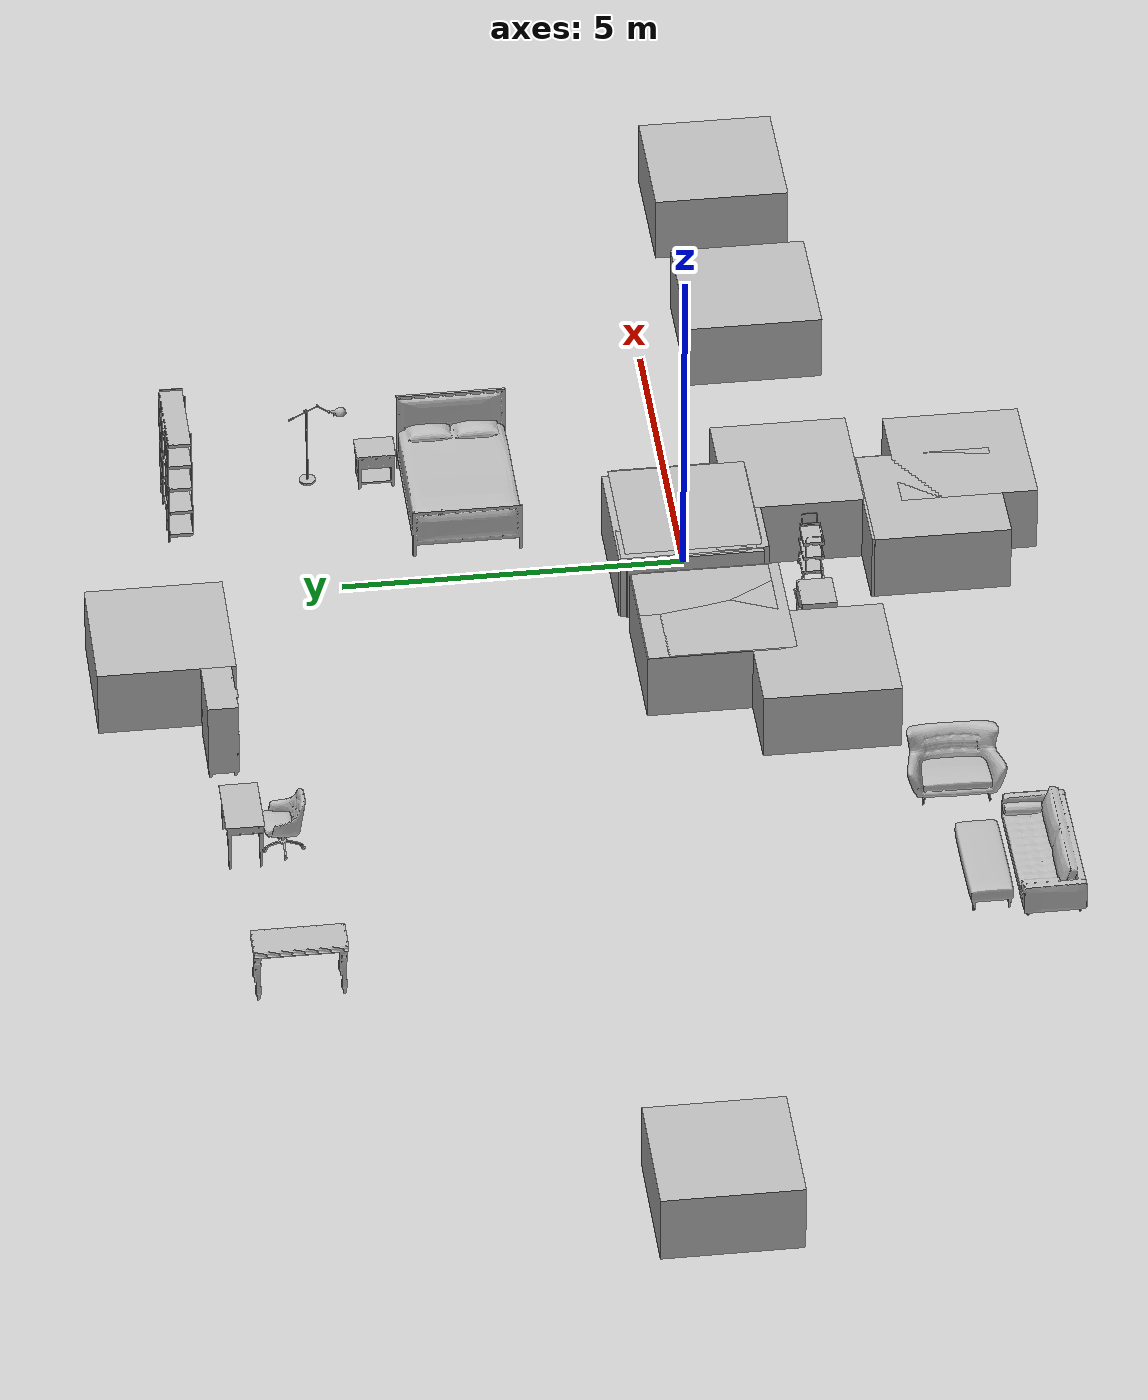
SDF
<sdf version="1.9">
 <world name="kaslab_robocup">
  <physics name="1ms" type="ignored">
   <max_step_size>0.001</max_step_size>
   <real_time_factor>1</real_time_factor>
   <real_time_update_rate>1000</real_time_update_rate>
  </physics>
  <plugin name="gz::sim::systems::Physics" filename="ignition-gazebo-physics-system"/>
  <plugin name="gz::sim::systems::UserCommands" filename="ignition-gazebo-user-commands-system"/>
  <plugin name="gz::sim::systems::SceneBroadcaster" filename="ignition-gazebo-scene-broadcaster-system"/>
  <plugin name="gz::sim::systems::Contact" filename="ignition-gazebo-contact-system"/>
  <plugin name="gz::sim::systems::Sensors" filename="libignition-gazebo-sensors-system.so"/>
  <plugin name="gz::sim::systems::Imu" filename="libignition-gazebo-imu-system.so"/>
  <gravity>0 0 -9.8</gravity>
  <magnetic_field>6e-06 2.3e-05 -4.2e-05</magnetic_field>
  <atmosphere type="adiabatic"/>
  <scene><ambient>0.4 0.4 0.4 1</ambient><background>0.7 0.7 0.7 1</background><shadows>true</shadows></scene>
  <model name="ground_plane">
   <static>true</static>
   <link name="link">
    <collision name="collision">
     <geometry><plane><normal>0 0 1</normal><size>100 100</size></plane></geometry>
    </collision>
    <visual name="visual">
     <geometry><plane><normal>0 0 1</normal><size>100 100</size></plane></geometry>
     <material>
      <ambient>0.8 0.8 0.8 1</ambient>
      <diffuse>0.8 0.8 0.8 1</diffuse>
      <specular>0.8 0.8 0.8 1</specular>
     </material>
    </visual>
    <inertial>
     <mass>1</mass>
     <inertia><ixx>1</ixx><ixy>0</ixy><ixz>0</ixz><iyy>1</iyy><iyz>0</iyz><izz>1</izz></inertia>
    </inertial>
   </link>
  </model>
  <include>
   <uri>model://Sofas_Oa1bfa586a8f8_lod0</uri>
   <name>Sofas_Oa1bfa586a8f8_lod0_8</name>
   <pose>-7.75 -4.11 0 0 -0 3.14</pose>
   <static>true</static>
  </include>
  <include>
   <uri>model://SofaTables_Occc3fc60df11_lod0</uri>
   <name>SofaTables_Occc3fc60df11_lod0_14</name>
   <pose>-9.03 6.60225 0 0 -0 1.57</pose>
   <static>true</static>
  </include>
  <include>
   <uri>model://LivingRoomChairs_Obc1361750757_lod0</uri>
   <name>LivingRoomChairs_Obc1361750757_lod0_12</name>
   <pose>-5.77248 -3.11844 0 0 -0 -1.59183</pose>
   <static>true</static>
  </include>
  <include>
   <uri>model://Dressers_O3026d3820106_lod0</uri>
   <name>Dressers_O3026d3820106_lod0_7</name>
   <pose>-3.72 7.15 0 0 -0 0</pose>
   <static>true</static>
  </include>
  <include>
   <uri>model://Ottomans_Oe0e3f5670b60_lod0</uri>
   <name>Ottomans_Oe0e3f5670b60_lod0_9</name>
   <pose>-7.75 -3.25004 0 0 -0 0</pose>
   <static>true</static>
  </include>
  <include>
   <uri>model://wall_0</uri>
   <name>wall_0</name>
   <pose>-2.496 -0.003422 0 0 -0 0</pose>
   <static>true</static>
  </include>
  <include>
   <uri>model://wall_1</uri>
   <name>wall_1</name>
   <pose>-2.48791 -0.018402 0 0 -0 0</pose>
   <static>true</static>
  </include>
  <include>
   <uri>model://wall_10</uri>
   <name>wall_10</name>
   <pose>-0.139485 0.079025 0 0 -0 0</pose>
   <static>true</static>
  </include>
  <include>
   <uri>model://wall_11</uri>
   <name>wall_11</name>
   <pose>-0.102581 0.073444 0 0 -0 0</pose>
   <static>true</static>
  </include>
  <include>
   <uri>model://wall_12</uri>
   <name>wall_12</name>
   <pose>-0.097621 0.008188 0 0 -0 0</pose>
   <static>true</static>
  </include>
  <include>
   <uri>model://wall_13</uri>
   <name>wall_13</name>
   <pose>-0.128935 -0.006042 0 0 -0 0</pose>
   <static>true</static>
  </include>
  <include>
   <uri>model://wall_14</uri>
   <name>wall_14</name>
   <pose>8.56808 -1.55714 0 0 -0 0</pose>
   <static>true</static>
  </include>
  <include>
   <uri>model://wall_15</uri>
   <name>wall_15</name>
   <pose>-0.105904 -3.59449 0 0 -0 0</pose>
   <static>true</static>
  </include>
  <include>
   <uri>model://wall_16</uri>
   <name>wall_16</name>
   <pose>-0.111787 -3.63543 0 0 -0 0</pose>
   <static>true</static>
  </include>
  <include>
   <uri>model://wall_19</uri>
   <name>wall_19</name>
   <pose>-0.10264 0.105205 0 0 -0 0</pose>
   <static>true</static>
  </include>
  <include>
   <uri>model://wall_20</uri>
   <name>wall_20</name>
   <pose>0.870944 -1.61568 0 0 -0 0</pose>
   <static>true</static>
  </include>
  <include>
   <uri>model://wall_20</uri>
   <name>wall_20_clone</name>
   <pose>5.31957 -1.61895 0 0 -0 0</pose>
   <static>true</static>
  </include>
  <include>
   <uri>model://wall_21</uri>
   <name>wall_21</name>
   <pose>0.779759 -4.15684 0 0 -0 0</pose>
   <static>true</static>
  </include>
  <include>
   <uri>model://wall_27</uri>
   <name>wall_27</name>
   <pose>-0.101765 0.085669 0 0 -0 0</pose>
   <static>true</static>
  </include>
  <include>
   <uri>model://wall_28</uri>
   <name>wall_28</name>
   <pose>-0.094699 -0.000858 0 0 -0 0</pose>
   <static>true</static>
  </include>
  <include>
   <uri>model://wall_29</uri>
   <name>wall_29</name>
   <pose>-2.47025 -0.171618 0 0 -0 0</pose>
   <static>true</static>
  </include>
  <include>
   <uri>model://wall_31</uri>
   <name>wall_31</name>
   <pose>-3.6192 -1.5304 0 0 -0 0</pose>
   <static>true</static>
  </include>
  <include>
   <uri>model://wall_33</uri>
   <name>wall_33</name>
   <pose>-2.48796 -0.019528 0 0 -0 0</pose>
   <static>true</static>
  </include>
  <include>
   <uri>model://wall_33</uri>
   <name>wall_33_clone</name>
   <pose>-14.4297 1.35711 0 0 0 -1.5714</pose>
   <static>true</static>
  </include>
  <include>
   <uri>model://wall_5</uri>
   <name>wall_5</name>
   <pose>-1.92681 7.85122 0 0 -0 1.57022</pose>
   <static>true</static>
  </include>
  <include>
   <uri>model://wall_7</uri>
   <name>wall_7</name>
   <pose>-0.079016 -0.094122 0 0 -0 0</pose>
   <static>true</static>
  </include>
  <include>
   <uri>model://wall_8</uri>
   <name>wall_8</name>
   <pose>-0.175003 -0.008628 0 0 -0 0</pose>
   <static>true</static>
  </include>
  <include>
   <uri>model://wall_9</uri>
   <name>wall_9</name>
   <pose>0.020455 -0.064411 0 0 -0 0</pose>
   <static>true</static>
  </include>
  <include>
   <uri>model://floor_Bedroom</uri>
   <name>floor_Bedroom</name>
   <pose>0 0 0.0001 0 -0 0</pose>
   <static>true</static>
  </include>
  <include>
   <uri>model://floor_Kitchen</uri>
   <name>floor_Kitchen</name>
   <pose>0 0 0.0001 0 -0 0</pose>
   <static>true</static>
  </include>
  <include>
   <uri>model://ServingCarts_Od1716e02c5bd_lod0</uri>
   <name>ServingCarts_Od1716e02c5bd_lod0_28</name>
   <pose>-0.449241 -1.80002 0 0 -0 3.14</pose>
   <static>true</static>
  </include>
  <include>
   <uri>model://DishWasher_f2d1aeaead9b_lod0</uri>
   <name>DishWasher_f2d1aeaead9b_lod0_23</name>
   <pose>-1.80001 -1.70731 0 0 -0 3.14</pose>
   <static>true</static>
  </include>
  <include>
   <uri>model://HomeOfficeDesks_Oab58b4fda1f7_lod0</uri>
   <name>HomeOfficeDesks_Oab58b4fda1f7_lod0_33</name>
   <pose>-5.83096 7.07951 0 0 -0 0</pose>
   <static>true</static>
  </include>
  <include>
   <uri>model://HomeOfficeDeskChairs_Oaed1cbd04270_lod0</uri>
   <name>HomeOfficeDeskChairs_Oaed1cbd04270_lod0_34</name>
   <pose>-5.87715 6.50205 0 0 -0 3.14</pose>
   <static>true</static>
  </include>
  <include>
   <uri>model://Bookcases_Oe43e7e39f537_lod0</uri>
   <name>Bookcases_Oe43e7e39f537_lod0_35</name>
   <pose>2.0255 7.2194 0 0 -0 0</pose>
   <static>true</static>
  </include>
  <include>
   <uri>model://FloorLamps_Oa651b7cbe4d7_lod0</uri>
   <name>FloorLamps_Oa651b7cbe4d7_lod0_36</name>
   <pose>2.65 5.239 0 0 -0 0</pose>
   <static>true</static>
  </include>
  <include>
   <uri>model://Nightstands_O14c5f5d1199b_lod0</uri>
   <name>Nightstands_O14c5f5d1199b_lod0_31</name>
   <pose>2.5606 4.25013 0 0 0 -1.57319</pose>
   <static>true</static>
  </include>
  <include>
   <uri>model://Headboards_Occ57434fb9f0_lod0</uri>
   <name>Headboards_Occ57434fb9f0_lod0_30</name>
   <pose>1.70223 3.10002 0 0 0 -1.57319</pose>
   <static>true</static>
  </include>
  <light name="sun" type="directional">
   <pose>0 0 10 0 -0 0</pose>
   <intensity>1</intensity>
   <direction>-0.5 0.1 -0.9</direction>
   <diffuse>0.8 0.8 0.8 1</diffuse>
   <specular>0.2 0.2 0.2 1</specular>
   <attenuation>
    <range>1000</range>
    <linear>0.01</linear>
    <constant>0.90000000000000002</constant>
    <quadratic>0.001</quadratic>
   </attenuation>
   <spot><inner_angle>0</inner_angle><outer_angle>0</outer_angle><falloff>0</falloff></spot>
  </light>
  <light name="Main_Bedroom_Ceiling_Light" type="point">
   <pose>-8 6.3 3 0 -0 0</pose>
   <cast_shadows>false</cast_shadows>
   <intensity>1</intensity>
   <direction>0 0 -1</direction>
   <diffuse>0.25 0.25 0.25 1</diffuse>
   <specular>0.1 0.1 0.1 1</specular>
   <attenuation>
    <range>20</range>
    <linear>0.01</linear>
    <constant>0.32000000000000001</constant>
    <quadratic>0.029999999999999999</quadratic>
   </attenuation>
   <spot><inner_angle>0</inner_angle><outer_angle>0</outer_angle><falloff>0</falloff></spot>
  </light>
  <light name="Living_Room_Ceiling_Light_1" type="point">
   <pose>-6.25 2.25 3 0 -0 0</pose>
   <cast_shadows>false</cast_shadows>
   <intensity>1</intensity>
   <direction>0 0 -1</direction>
   <diffuse>0.25 0.25 0.25 1</diffuse>
   <specular>0.1 0.1 0.1 1</specular>
   <attenuation>
    <range>20</range>
    <linear>0.01</linear>
    <constant>0.32000000000000001</constant>
    <quadratic>0.029999999999999999</quadratic>
   </attenuation>
   <spot><inner_angle>0</inner_angle><outer_angle>0</outer_angle><falloff>0</falloff></spot>
  </light>
  <light name="Living_Room_Ceiling_Light_2" type="point">
   <pose>-6.25 -2.5 3 0 -0 0</pose>
   <cast_shadows>false</cast_shadows>
   <intensity>1</intensity>
   <direction>0 0 -1</direction>
   <diffuse>0.25 0.25 0.25 1</diffuse>
   <specular>0.1 0.1 0.1 1</specular>
   <attenuation>
    <range>20</range>
    <linear>0.01</linear>
    <constant>0.32000000000000001</constant>
    <quadratic>0.029999999999999999</quadratic>
   </attenuation>
   <spot><inner_angle>0</inner_angle><outer_angle>0</outer_angle><falloff>0</falloff></spot>
  </light>
  <light name="Bathroom_Ceiling_Light" type="point">
   <pose>-11 1.05 3 0 -0 0</pose>
   <cast_shadows>false</cast_shadows>
   <intensity>1</intensity>
   <direction>0 0 -1</direction>
   <diffuse>0.25 0.25 0.25 1</diffuse>
   <specular>0.1 0.1 0.1 1</specular>
   <attenuation>
    <range>20</range>
    <linear>0.01</linear>
    <constant>0.32000000000000001</constant>
    <quadratic>0.029999999999999999</quadratic>
   </attenuation>
   <spot><inner_angle>0</inner_angle><outer_angle>0</outer_angle><falloff>0</falloff></spot>
  </light>
  <light name="Kitchen_Ceiling_Light_1" type="point">
   <pose>0 0 3 0 -0 0</pose>
   <cast_shadows>false</cast_shadows>
   <intensity>1</intensity>
   <direction>0 0 -1</direction>
   <diffuse>0.25 0.25 0.25 1</diffuse>
   <specular>0.1 0.1 0.1 1</specular>
   <attenuation>
    <range>20</range>
    <linear>0.01</linear>
    <constant>0.32000000000000001</constant>
    <quadratic>0.029999999999999999</quadratic>
   </attenuation>
   <spot><inner_angle>0</inner_angle><outer_angle>0</outer_angle><falloff>0</falloff></spot>
  </light>
  <light name="Bedroom_Ceiling_Light_1" type="point">
   <pose>1 5 3 0 -0 0</pose>
   <cast_shadows>false</cast_shadows>
   <intensity>1</intensity>
   <direction>0 0 -1</direction>
   <diffuse>0.25 0.25 0.15 1</diffuse>
   <specular>0.1 0.1 0.1 1</specular>
   <attenuation>
    <range>20</range>
    <linear>0.01</linear>
    <constant>0.32000000000000001</constant>
    <quadratic>0.029999999999999999</quadratic>
   </attenuation>
   <spot><inner_angle>0</inner_angle><outer_angle>0</outer_angle><falloff>0</falloff></spot>
  </light>
  <light name="Hallway_Ceiling_Light_1" type="point">
   <pose>-3 4 3 0 -0 0</pose>
   <cast_shadows>false</cast_shadows>
   <intensity>1</intensity>
   <direction>0 0 -1</direction>
   <diffuse>0.15 0.15 0.15 1</diffuse>
   <specular>0.1 0.1 0.1 1</specular>
   <attenuation>
    <range>20</range>
    <linear>0.01</linear>
    <constant>0.32000000000000001</constant>
    <quadratic>0.029999999999999999</quadratic>
   </attenuation>
   <spot><inner_angle>0</inner_angle><outer_angle>0</outer_angle><falloff>0</falloff></spot>
  </light>
 </world>
</sdf>

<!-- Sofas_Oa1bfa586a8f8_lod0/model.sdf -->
<sdf version="1.6">
	<model name="Sofas_Oa1bfa586a8f8_lod0">
		<link name="main_link">
			<visual name="visual_RootNode">
				<geometry>
					<mesh>
						<uri>model://Sofas_Oa1bfa586a8f8_lod0/meshes/visual_RootNode.dae</uri>
					</mesh>
				</geometry>
			</visual>
			<collision name="collision_RootNode_lod0_0">
				<geometry>
					<mesh>
						<uri>model://Sofas_Oa1bfa586a8f8_lod0/meshes/collision_RootNode_lod0_0.dae</uri>
					</mesh>
				</geometry>
			</collision>
		</link>
	</model>
</sdf>

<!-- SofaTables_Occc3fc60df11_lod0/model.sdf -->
<sdf version="1.6">
	<model name="SofaTables_Occc3fc60df11_lod0">
		<link name="main_link">
			<visual name="visual_RootNode">
				<geometry>
					<mesh>
						<uri>model://SofaTables_Occc3fc60df11_lod0/meshes/visual_RootNode.dae</uri>
					</mesh>
				</geometry>
			</visual>
			<collision name="collision_RootNode_lod0_0">
				<geometry>
					<mesh>
						<uri>model://SofaTables_Occc3fc60df11_lod0/meshes/collision_RootNode_lod0_0.dae</uri>
					</mesh>
				</geometry>
			</collision>
		</link>
	</model>
</sdf>

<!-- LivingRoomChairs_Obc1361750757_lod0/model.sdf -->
<sdf version="1.6">
	<model name="LivingRoomChairs_Obc1361750757_lod0">
		<link name="main_link">
			<visual name="visual_RootNode">
				<geometry>
					<mesh>
						<uri>model://LivingRoomChairs_Obc1361750757_lod0/meshes/visual_RootNode.dae</uri>
					</mesh>
				</geometry>
			</visual>
			<collision name="collision_RootNode_lod0_0">
				<geometry>
					<mesh>
						<uri>model://LivingRoomChairs_Obc1361750757_lod0/meshes/collision_RootNode_lod0_0.dae</uri>
					</mesh>
				</geometry>
			</collision>
		</link>
	</model>
</sdf>

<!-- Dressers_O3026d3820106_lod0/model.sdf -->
<sdf version="1.6">
	<model name="Dressers_O3026d3820106_lod0">
		<link name="main_link">
			<visual name="visual_RootNode">
				<geometry>
					<mesh>
						<uri>model://Dressers_O3026d3820106_lod0/meshes/visual_RootNode.dae</uri>
					</mesh>
				</geometry>
			</visual>
			<collision name="collision_RootNode_lod0_0">
				<geometry>
					<mesh>
						<uri>model://Dressers_O3026d3820106_lod0/meshes/collision_RootNode_lod0_0.dae</uri>
					</mesh>
				</geometry>
			</collision>
		</link>
	</model>
</sdf>

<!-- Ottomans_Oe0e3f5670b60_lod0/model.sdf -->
<sdf version="1.6">
	<model name="Ottomans_Oe0e3f5670b60_lod0">
		<link name="main_link">
			<visual name="visual_RootNode">
				<geometry>
					<mesh>
						<uri>model://Ottomans_Oe0e3f5670b60_lod0/meshes/visual_RootNode.dae</uri>
					</mesh>
				</geometry>
			</visual>
			<collision name="collision_RootNode_lod0_0">
				<geometry>
					<mesh>
						<uri>model://Ottomans_Oe0e3f5670b60_lod0/meshes/collision_RootNode_lod0_0.dae</uri>
					</mesh>
				</geometry>
			</collision>
		</link>
	</model>
</sdf>

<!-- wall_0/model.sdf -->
<sdf version="1.6">
  <model name="wall_0">
    <static>true</static>
    <link name="link">
      <collision name="collision">
        <pose>0 0 0 0 0 0</pose>
        <geometry>
          <mesh>
            <uri>model://wall_0/meshes/wall_0.dae</uri>
            <scale>1 1 1</scale>
          </mesh>
        </geometry>
        <surface>
          <contact>
            <collide_bitmask>2</collide_bitmask>
          </contact>
        </surface>
      </collision>
      <visual name="visual">
        <meta>
          <layer>0</layer>
        </meta>
        <pose>0 0 0 0 0 0</pose>
        <geometry>
          <mesh>
            <uri>model://wall_0/meshes/wall_0.dae</uri>
            <scale>1 1 1</scale>
          </mesh>
        </geometry>
      </visual>
    </link>
  </model>
</sdf>

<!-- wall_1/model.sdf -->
<sdf version="1.6">
  <model name="wall_1">
    <static>true</static>
    <link name="link">
      <collision name="collision">
        <pose>0 0 0 0 0 0</pose>
        <geometry>
          <mesh>
            <uri>model://wall_1/meshes/wall_1.dae</uri>
            <scale>1 1 1</scale>
          </mesh>
        </geometry>
        <surface>
          <contact>
            <collide_bitmask>2</collide_bitmask>
          </contact>
        </surface>
      </collision>
      <visual name="visual">
        <meta>
          <layer>0</layer>
        </meta>
        <pose>0 0 0 0 0 0</pose>
        <geometry>
          <mesh>
            <uri>model://wall_1/meshes/wall_1.dae</uri>
            <scale>1 1 1</scale>
          </mesh>
        </geometry>
      </visual>
    </link>
  </model>
</sdf>

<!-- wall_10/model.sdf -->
<sdf version="1.6">
  <model name="wall_10">
    <static>true</static>
    <link name="link">
      <collision name="collision">
        <pose>0 0 0 0 0 0</pose>
        <geometry>
          <mesh>
            <uri>model://wall_10/meshes/wall_10.dae</uri>
            <scale>1 1 1</scale>
          </mesh>
        </geometry>
        <surface>
          <contact>
            <collide_bitmask>2</collide_bitmask>
          </contact>
        </surface>
      </collision>
      <visual name="visual">
        <meta>
          <layer>0</layer>
        </meta>
        <pose>0 0 0 0 0 0</pose>
        <geometry>
          <mesh>
            <uri>model://wall_10/meshes/wall_10.dae</uri>
            <scale>1 1 1</scale>
          </mesh>
        </geometry>
      </visual>
    </link>
  </model>
</sdf>

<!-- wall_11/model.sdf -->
<sdf version="1.6">
  <model name="wall_11">
    <static>true</static>
    <link name="link">
      <collision name="collision">
        <pose>0 0 0 0 0 0</pose>
        <geometry>
          <mesh>
            <uri>model://wall_11/meshes/wall_11.dae</uri>
            <scale>1 1 1</scale>
          </mesh>
        </geometry>
        <surface>
          <contact>
            <collide_bitmask>2</collide_bitmask>
          </contact>
        </surface>
      </collision>
      <visual name="visual">
        <meta>
          <layer>0</layer>
        </meta>
        <pose>0 0 0 0 0 0</pose>
        <geometry>
          <mesh>
            <uri>model://wall_11/meshes/wall_11.dae</uri>
            <scale>1 1 1</scale>
          </mesh>
        </geometry>
      </visual>
    </link>
  </model>
</sdf>

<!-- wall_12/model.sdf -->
<sdf version="1.6">
  <model name="wall_12">
    <static>true</static>
    <link name="link">
      <collision name="collision">
        <pose>0 0 0 0 0 0</pose>
        <geometry>
          <mesh>
            <uri>model://wall_12/meshes/wall_12.dae</uri>
            <scale>1 1 1</scale>
          </mesh>
        </geometry>
        <surface>
          <contact>
            <collide_bitmask>2</collide_bitmask>
          </contact>
        </surface>
      </collision>
      <visual name="visual">
        <meta>
          <layer>0</layer>
        </meta>
        <pose>0 0 0 0 0 0</pose>
        <geometry>
          <mesh>
            <uri>model://wall_12/meshes/wall_12.dae</uri>
            <scale>1 1 1</scale>
          </mesh>
        </geometry>
      </visual>
    </link>
  </model>
</sdf>

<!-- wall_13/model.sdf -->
<sdf version="1.6">
  <model name="wall_13">
    <static>true</static>
    <link name="link">
      <collision name="collision">
        <pose>0 0 0 0 0 0</pose>
        <geometry>
          <mesh>
            <uri>model://wall_13/meshes/wall_13.dae</uri>
            <scale>1 1 1</scale>
          </mesh>
        </geometry>
        <surface>
          <contact>
            <collide_bitmask>2</collide_bitmask>
          </contact>
        </surface>
      </collision>
      <visual name="visual">
        <meta>
          <layer>0</layer>
        </meta>
        <pose>0 0 0 0 0 0</pose>
        <geometry>
          <mesh>
            <uri>model://wall_13/meshes/wall_13.dae</uri>
            <scale>1 1 1</scale>
          </mesh>
        </geometry>
      </visual>
    </link>
  </model>
</sdf>

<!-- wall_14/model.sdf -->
<sdf version="1.6">
  <model name="wall_14">
    <static>true</static>
    <link name="link">
      <collision name="collision">
        <pose>0 0 0 0 0 0</pose>
        <geometry>
          <mesh>
            <uri>model://wall_14/meshes/wall_14.dae</uri>
            <scale>1 1 1</scale>
          </mesh>
        </geometry>
        <surface>
          <contact>
            <collide_bitmask>2</collide_bitmask>
          </contact>
        </surface>
      </collision>
      <visual name="visual">
        <meta>
          <layer>0</layer>
        </meta>
        <pose>0 0 0 0 0 0</pose>
        <geometry>
          <mesh>
            <uri>model://wall_14/meshes/wall_14.dae</uri>
            <scale>1 1 1</scale>
          </mesh>
        </geometry>
      </visual>
    </link>
  </model>
</sdf>

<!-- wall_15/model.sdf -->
<sdf version="1.6">
  <model name="wall_15">
    <static>true</static>
    <link name="link">
      <collision name="collision">
        <pose>0 0 0 0 0 0</pose>
        <geometry>
          <mesh>
            <uri>model://wall_15/meshes/wall_15.dae</uri>
            <scale>1 1 1</scale>
          </mesh>
        </geometry>
        <surface>
          <contact>
            <collide_bitmask>2</collide_bitmask>
          </contact>
        </surface>
      </collision>
      <visual name="visual">
        <meta>
          <layer>0</layer>
        </meta>
        <pose>0 0 0 0 0 0</pose>
        <geometry>
          <mesh>
            <uri>model://wall_15/meshes/wall_15.dae</uri>
            <scale>1 1 1</scale>
          </mesh>
        </geometry>
      </visual>
    </link>
  </model>
</sdf>

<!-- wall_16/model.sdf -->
<sdf version="1.6">
  <model name="wall_16">
    <static>true</static>
    <link name="link">
      <collision name="collision">
        <pose>0 0 0 0 0 0</pose>
        <geometry>
          <mesh>
            <uri>model://wall_16/meshes/wall_16.dae</uri>
            <scale>1 1 1</scale>
          </mesh>
        </geometry>
        <surface>
          <contact>
            <collide_bitmask>2</collide_bitmask>
          </contact>
        </surface>
      </collision>
      <visual name="visual">
        <meta>
          <layer>0</layer>
        </meta>
        <pose>0 0 0 0 0 0</pose>
        <geometry>
          <mesh>
            <uri>model://wall_16/meshes/wall_16.dae</uri>
            <scale>1 1 1</scale>
          </mesh>
        </geometry>
      </visual>
    </link>
  </model>
</sdf>

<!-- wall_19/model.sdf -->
<sdf version="1.6">
  <model name="wall_19">
    <static>true</static>
    <link name="link">
      <collision name="collision">
        <pose>0 0 0 0 0 0</pose>
        <geometry>
          <mesh>
            <uri>model://wall_19/meshes/wall_19.dae</uri>
            <scale>1 1 1</scale>
          </mesh>
        </geometry>
        <surface>
          <contact>
            <collide_bitmask>2</collide_bitmask>
          </contact>
        </surface>
      </collision>
      <visual name="visual">
        <meta>
          <layer>0</layer>
        </meta>
        <pose>0 0 0 0 0 0</pose>
        <geometry>
          <mesh>
            <uri>model://wall_19/meshes/wall_19.dae</uri>
            <scale>1 1 1</scale>
          </mesh>
        </geometry>
      </visual>
    </link>
  </model>
</sdf>

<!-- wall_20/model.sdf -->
<sdf version="1.6">
  <model name="wall_20">
    <static>true</static>
    <link name="link">
      <collision name="collision">
        <pose>0 0 0 0 0 0</pose>
        <geometry>
          <mesh>
            <uri>model://wall_20/meshes/wall_20.dae</uri>
            <scale>1 1 1</scale>
          </mesh>
        </geometry>
        <surface>
          <contact>
            <collide_bitmask>2</collide_bitmask>
          </contact>
        </surface>
      </collision>
      <visual name="visual">
        <meta>
          <layer>0</layer>
        </meta>
        <pose>0 0 0 0 0 0</pose>
        <geometry>
          <mesh>
            <uri>model://wall_20/meshes/wall_20.dae</uri>
            <scale>1 1 1</scale>
          </mesh>
        </geometry>
      </visual>
    </link>
  </model>
</sdf>

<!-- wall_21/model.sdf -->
<sdf version="1.6">
  <model name="wall_21">
    <static>true</static>
    <link name="link">
      <collision name="collision">
        <pose>0 0 0 0 0 0</pose>
        <geometry>
          <mesh>
            <uri>model://wall_21/meshes/wall_21.dae</uri>
            <scale>1 1 1</scale>
          </mesh>
        </geometry>
        <surface>
          <contact>
            <collide_bitmask>2</collide_bitmask>
          </contact>
        </surface>
      </collision>
      <visual name="visual">
        <meta>
          <layer>0</layer>
        </meta>
        <pose>0 0 0 0 0 0</pose>
        <geometry>
          <mesh>
            <uri>model://wall_21/meshes/wall_21.dae</uri>
            <scale>1 1 1</scale>
          </mesh>
        </geometry>
      </visual>
    </link>
  </model>
</sdf>

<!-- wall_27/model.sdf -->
<sdf version="1.6">
  <model name="wall_27">
    <static>true</static>
    <link name="link">
      <collision name="collision">
        <pose>0 0 0 0 0 0</pose>
        <geometry>
          <mesh>
            <uri>model://wall_27/meshes/wall_27.dae</uri>
            <scale>1 1 1</scale>
          </mesh>
        </geometry>
        <surface>
          <contact>
            <collide_bitmask>2</collide_bitmask>
          </contact>
        </surface>
      </collision>
      <visual name="visual">
        <meta>
          <layer>0</layer>
        </meta>
        <pose>0 0 0 0 0 0</pose>
        <geometry>
          <mesh>
            <uri>model://wall_27/meshes/wall_27.dae</uri>
            <scale>1 1 1</scale>
          </mesh>
        </geometry>
      </visual>
    </link>
  </model>
</sdf>

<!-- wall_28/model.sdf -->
<sdf version="1.6">
  <model name="wall_28">
    <static>true</static>
    <link name="link">
      <collision name="collision">
        <pose>0 0 0 0 0 0</pose>
        <geometry>
          <mesh>
            <uri>model://wall_28/meshes/wall_28.dae</uri>
            <scale>1 1 1</scale>
          </mesh>
        </geometry>
        <surface>
          <contact>
            <collide_bitmask>2</collide_bitmask>
          </contact>
        </surface>
      </collision>
      <visual name="visual">
        <meta>
          <layer>0</layer>
        </meta>
        <pose>0 0 0 0 0 0</pose>
        <geometry>
          <mesh>
            <uri>model://wall_28/meshes/wall_28.dae</uri>
            <scale>1 1 1</scale>
          </mesh>
        </geometry>
      </visual>
    </link>
  </model>
</sdf>

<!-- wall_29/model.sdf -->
<sdf version="1.6">
  <model name="wall_29">
    <static>true</static>
    <link name="link">
      <collision name="collision">
        <pose>0 0 0 0 0 0</pose>
        <geometry>
          <mesh>
            <uri>model://wall_29/meshes/wall_29.dae</uri>
            <scale>1 1 1</scale>
          </mesh>
        </geometry>
        <surface>
          <contact>
            <collide_bitmask>2</collide_bitmask>
          </contact>
        </surface>
      </collision>
      <visual name="visual">
        <meta>
          <layer>0</layer>
        </meta>
        <pose>0 0 0 0 0 0</pose>
        <geometry>
          <mesh>
            <uri>model://wall_29/meshes/wall_29.dae</uri>
            <scale>1 1 1</scale>
          </mesh>
        </geometry>
      </visual>
    </link>
  </model>
</sdf>

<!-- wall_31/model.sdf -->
<sdf version="1.6">
  <model name="wall_31">
    <static>true</static>
    <link name="link">
      <collision name="collision">
        <pose>0 0 0 0 0 0</pose>
        <geometry>
          <mesh>
            <uri>model://wall_31/meshes/wall_31.dae</uri>
            <scale>1 1 1</scale>
          </mesh>
        </geometry>
        <surface>
          <contact>
            <collide_bitmask>2</collide_bitmask>
          </contact>
        </surface>
      </collision>
      <visual name="visual">
        <meta>
          <layer>0</layer>
        </meta>
        <pose>0 0 0 0 0 0</pose>
        <geometry>
          <mesh>
            <uri>model://wall_31/meshes/wall_31.dae</uri>
            <scale>1 1 1</scale>
          </mesh>
        </geometry>
      </visual>
    </link>
  </model>
</sdf>

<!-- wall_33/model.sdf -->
<sdf version="1.6">
  <model name="wall_33">
    <static>true</static>
    <link name="link">
      <collision name="collision">
        <pose>0 0 0 0 0 0</pose>
        <geometry>
          <mesh>
            <uri>model://wall_33/meshes/wall_33.dae</uri>
            <scale>1 1 1</scale>
          </mesh>
        </geometry>
        <surface>
          <contact>
            <collide_bitmask>2</collide_bitmask>
          </contact>
        </surface>
      </collision>
      <visual name="visual">
        <meta>
          <layer>0</layer>
        </meta>
        <pose>0 0 0 0 0 0</pose>
        <geometry>
          <mesh>
            <uri>model://wall_33/meshes/wall_33.dae</uri>
            <scale>1 1 1</scale>
          </mesh>
        </geometry>
      </visual>
    </link>
  </model>
</sdf>

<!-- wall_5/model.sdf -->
<sdf version="1.6">
  <model name="wall_5">
    <static>true</static>
    <link name="link">
      <collision name="collision">
        <pose>0 0 0 0 0 0</pose>
        <geometry>
          <mesh>
            <uri>model://wall_5/meshes/wall_5.dae</uri>
            <scale>1 1 1</scale>
          </mesh>
        </geometry>
        <surface>
          <contact>
            <collide_bitmask>2</collide_bitmask>
          </contact>
        </surface>
      </collision>
      <visual name="visual">
        <meta>
          <layer>0</layer>
        </meta>
        <pose>0 0 0 0 0 0</pose>
        <geometry>
          <mesh>
            <uri>model://wall_5/meshes/wall_5.dae</uri>
            <scale>1 1 1</scale>
          </mesh>
        </geometry>
      </visual>
    </link>
  </model>
</sdf>

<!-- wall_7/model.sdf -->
<sdf version="1.6">
  <model name="wall_7">
    <static>true</static>
    <link name="link">
      <collision name="collision">
        <pose>0 0 0 0 0 0</pose>
        <geometry>
          <mesh>
            <uri>model://wall_7/meshes/wall_7.dae</uri>
            <scale>1 1 1</scale>
          </mesh>
        </geometry>
        <surface>
          <contact>
            <collide_bitmask>2</collide_bitmask>
          </contact>
        </surface>
      </collision>
      <visual name="visual">
        <meta>
          <layer>0</layer>
        </meta>
        <pose>0 0 0 0 0 0</pose>
        <geometry>
          <mesh>
            <uri>model://wall_7/meshes/wall_7.dae</uri>
            <scale>1 1 1</scale>
          </mesh>
        </geometry>
      </visual>
    </link>
  </model>
</sdf>

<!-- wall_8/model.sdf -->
<sdf version="1.6">
  <model name="wall_8">
    <static>true</static>
    <link name="link">
      <collision name="collision">
        <pose>0 0 0 0 0 0</pose>
        <geometry>
          <mesh>
            <uri>model://wall_8/meshes/wall_8.dae</uri>
            <scale>1 1 1</scale>
          </mesh>
        </geometry>
        <surface>
          <contact>
            <collide_bitmask>2</collide_bitmask>
          </contact>
        </surface>
      </collision>
      <visual name="visual">
        <meta>
          <layer>0</layer>
        </meta>
        <pose>0 0 0 0 0 0</pose>
        <geometry>
          <mesh>
            <uri>model://wall_8/meshes/wall_8.dae</uri>
            <scale>1 1 1</scale>
          </mesh>
        </geometry>
      </visual>
    </link>
  </model>
</sdf>

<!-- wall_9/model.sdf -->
<sdf version="1.6">
  <model name="wall_9">
    <static>true</static>
    <link name="link">
      <collision name="collision">
        <pose>0 0 0 0 0 0</pose>
        <geometry>
          <mesh>
            <uri>model://wall_9/meshes/wall_9.dae</uri>
            <scale>1 1 1</scale>
          </mesh>
        </geometry>
        <surface>
          <contact>
            <collide_bitmask>2</collide_bitmask>
          </contact>
        </surface>
      </collision>
      <visual name="visual">
        <meta>
          <layer>0</layer>
        </meta>
        <pose>0 0 0 0 0 0</pose>
        <geometry>
          <mesh>
            <uri>model://wall_9/meshes/wall_9.dae</uri>
            <scale>1 1 1</scale>
          </mesh>
        </geometry>
      </visual>
    </link>
  </model>
</sdf>

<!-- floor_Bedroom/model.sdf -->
<sdf version="1.6">
  <model name="floor_Bedroom">
    <static>true</static>
    <link name="link">
      <collision name="collision">
        <pose>0 0 0 0 0 0</pose>
        <geometry>
          <mesh>
            <uri>model://floor_Bedroom/meshes/floor_Bedroom.dae</uri>
            <scale>1 1 1</scale>
          </mesh>
        </geometry>
        <surface>
          <contact>
            <collide_bitmask>2</collide_bitmask>
          </contact>
          <friction>
            <ode>
              <mu>100</mu>
              <mu2>50</mu2>
            </ode>
          </friction>
        </surface>
      </collision>
      <visual name="visual">
        <meta>
          <layer>0</layer>
        </meta>
        <pose>0 0 0 0 0 0</pose>
        <geometry>
          <mesh>
            <uri>model://floor_Bedroom/meshes/floor_Bedroom.dae</uri>
            <scale>1 1 1</scale>
          </mesh>
        </geometry>
      </visual>
    </link>
  </model>
</sdf>

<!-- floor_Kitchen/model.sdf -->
<sdf version="1.6">
  <model name="floor_Kitchen">
    <static>true</static>
    <link name="link">
      <collision name="collision">
        <pose>0 0 0 0 0 0</pose>
        <geometry>
          <mesh>
            <uri>model://floor_Kitchen/meshes/floor_Kitchen.dae</uri>
            <scale>1 1 1</scale>
          </mesh>
        </geometry>
        <surface>
          <contact>
            <collide_bitmask>2</collide_bitmask>
          </contact>
          <friction>
            <ode>
              <mu>100</mu>
              <mu2>50</mu2>
            </ode>
          </friction>
        </surface>
      </collision>
      <visual name="visual">
        <meta>
          <layer>0</layer>
        </meta>
        <pose>0 0 0 0 0 0</pose>
        <geometry>
          <mesh>
            <uri>model://floor_Kitchen/meshes/floor_Kitchen.dae</uri>
            <scale>1 1 1</scale>
          </mesh>
        </geometry>
      </visual>
    </link>
  </model>
</sdf>

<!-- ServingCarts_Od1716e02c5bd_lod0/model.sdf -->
<sdf version="1.6">
	<model name="ServingCarts_Od1716e02c5bd_lod0">
		<link name="main_link">
			<visual name="visual_RootNode">
				<geometry>
					<mesh>
						<uri>model://ServingCarts_Od1716e02c5bd_lod0/meshes/visual_RootNode.dae</uri>
					</mesh>
				</geometry>
			</visual>
			<collision name="collision_RootNode_lod0_0">
				<geometry>
					<mesh>
						<uri>model://ServingCarts_Od1716e02c5bd_lod0/meshes/collision_RootNode_lod0_0.dae</uri>
					</mesh>
				</geometry>
			</collision>
		</link>
	</model>
</sdf>

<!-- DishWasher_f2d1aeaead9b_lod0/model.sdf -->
<sdf version='1.6'>
  <model name='10_DishWasher'>
    <link name='body'>
	  <inertial>
        <mass>30</mass>
        <pose frame=''>0 0 0 0 0 0</pose>
        <inertia>
          <ixx>1.86624999</ixx>
          <ixy>0</ixy>
          <ixz>0</ixz>
          <iyy>2.09024999</iyy>
          <iyz>0</iyz>
          <izz>1.576</izz>
        </inertia>
      </inertial>
      <pose frame=''>0 0 0 0 -0 0</pose>
      <self_collide>0</self_collide>
      <kinematic>0</kinematic>
      <gravity>1</gravity>
      <visual name='visual'>
        <geometry>
          <mesh>
            <uri>model://DishWasher_f2d1aeaead9b_lod0/meshes/visual_LowPoly_10_DishWasher.dae</uri>
          </mesh>
        </geometry>
		<meta> <layer> 1 </layer></meta>
      </visual>
      <collision name='collision_0'>
        <laser_retro>0</laser_retro>
        <max_contacts>10</max_contacts>
        <pose frame=''>0 0 0 0 -0 0</pose>
        <geometry>
          <mesh>
            <uri>model://DishWasher_f2d1aeaead9b_lod0/meshes/collision_10_DishWasher.dae</uri>
            <scale>1 1 1</scale>
          </mesh>
        </geometry>
		<surface>
          <friction>
            <ode>
              <mu>0.4</mu>
              <mu2>0.4</mu2>
              <fdir1>0 0 0</fdir1>
              <slip1>0</slip1>
              <slip2>0</slip2>
            </ode>
            <torsional>
              <coefficient>1</coefficient>
              <patch_radius>0</patch_radius>
              <surface_radius>0</surface_radius>
              <use_patch_radius>1</use_patch_radius>
              <ode>
                <slip>0</slip>
              </ode>
            </torsional>
          </friction>
        </surface>
      </collision>
    </link>
    <static>true</static>
  </model>
</sdf>

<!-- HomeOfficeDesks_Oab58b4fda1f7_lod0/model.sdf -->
<sdf version="1.6">
	<model name="HomeOfficeDesks_Oab58b4fda1f7_lod0">
		<link name="main_link">
			<visual name="visual_RootNode">
				<geometry>
					<mesh>
						<uri>model://HomeOfficeDesks_Oab58b4fda1f7_lod0/meshes/visual_RootNode.dae</uri>
					</mesh>
				</geometry>
			</visual>
			<collision name="collision_RootNode_lod0_0">
				<geometry>
					<mesh>
						<uri>model://HomeOfficeDesks_Oab58b4fda1f7_lod0/meshes/collision_RootNode_lod0_0.dae</uri>
					</mesh>
				</geometry>
			</collision>
		</link>
	</model>
</sdf>

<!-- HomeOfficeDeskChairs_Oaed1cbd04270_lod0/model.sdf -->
<sdf version="1.6">
	<model name="HomeOfficeDeskChairs_Oaed1cbd04270_lod0">
		<link name="main_link">
			<visual name="visual_RootNode">
				<geometry>
					<mesh>
						<uri>model://HomeOfficeDeskChairs_Oaed1cbd04270_lod0/meshes/visual_RootNode.dae</uri>
					</mesh>
				</geometry>
			</visual>
			<collision name="collision_RootNode_lod0_0">
				<geometry>
					<mesh>
						<uri>model://HomeOfficeDeskChairs_Oaed1cbd04270_lod0/meshes/collision_RootNode_lod0_0.dae</uri>
					</mesh>
				</geometry>
			</collision>
		</link>
	</model>
</sdf>

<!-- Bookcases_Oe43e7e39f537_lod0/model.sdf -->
<sdf version="1.6">
	<model name="Bookcases_Oe43e7e39f537_lod0">
		<link name="main_link">
			<visual name="visual_RootNode">
				<geometry>
					<mesh>
						<uri>model://Bookcases_Oe43e7e39f537_lod0/meshes/visual_RootNode.dae</uri>
					</mesh>
				</geometry>
			</visual>
			<collision name="collision_RootNode_lod0_0">
				<geometry>
					<mesh>
						<uri>model://Bookcases_Oe43e7e39f537_lod0/meshes/collision_RootNode_lod0_0.dae</uri>
					</mesh>
				</geometry>
			</collision>
		</link>
	</model>
</sdf>

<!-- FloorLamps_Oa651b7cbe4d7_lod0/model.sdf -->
<sdf version="1.6">
	<model name="FloorLamps_Oa651b7cbe4d7_lod0">
		<link name="main_link">
			<visual name="visual_RootNode">
				<geometry>
					<mesh>
						<uri>model://FloorLamps_Oa651b7cbe4d7_lod0/meshes/visual_RootNode.dae</uri>
					</mesh>
				</geometry>
			</visual>
			<collision name="collision_RootNode_lod0_0">
				<geometry>
					<mesh>
						<uri>model://FloorLamps_Oa651b7cbe4d7_lod0/meshes/collision_RootNode_lod0_0.dae</uri>
					</mesh>
				</geometry>
			</collision>
		</link>
	</model>
</sdf>

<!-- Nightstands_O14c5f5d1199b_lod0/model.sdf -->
<sdf version="1.6">
	<model name="Nightstands_O14c5f5d1199b_lod0">
		<link name="main_link">
			<visual name="visual_RootNode">
				<geometry>
					<mesh>
						<uri>model://Nightstands_O14c5f5d1199b_lod0/meshes/visual_RootNode.dae</uri>
					</mesh>
				</geometry>
			</visual>
			<collision name="collision_RootNode_lod0_0">
				<geometry>
					<mesh>
						<uri>model://Nightstands_O14c5f5d1199b_lod0/meshes/collision_RootNode_lod0_0.dae</uri>
					</mesh>
				</geometry>
			</collision>
		</link>
	</model>
</sdf>

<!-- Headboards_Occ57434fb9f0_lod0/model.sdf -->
<sdf version="1.6">
	<model name="Headboards_Occ57434fb9f0_lod0">
		<link name="main_link">
			<visual name="visual_RootNode">
				<geometry>
					<mesh>
						<uri>model://Headboards_Occ57434fb9f0_lod0/meshes/visual_RootNode.dae</uri>
					</mesh>
				</geometry>
			</visual>
			<collision name="collision_RootNode_lod0_0">
				<geometry>
					<mesh>
						<uri>model://Headboards_Occ57434fb9f0_lod0/meshes/collision_RootNode_lod0_0.dae</uri>
					</mesh>
				</geometry>
			</collision>
		</link>
	</model>
</sdf>
